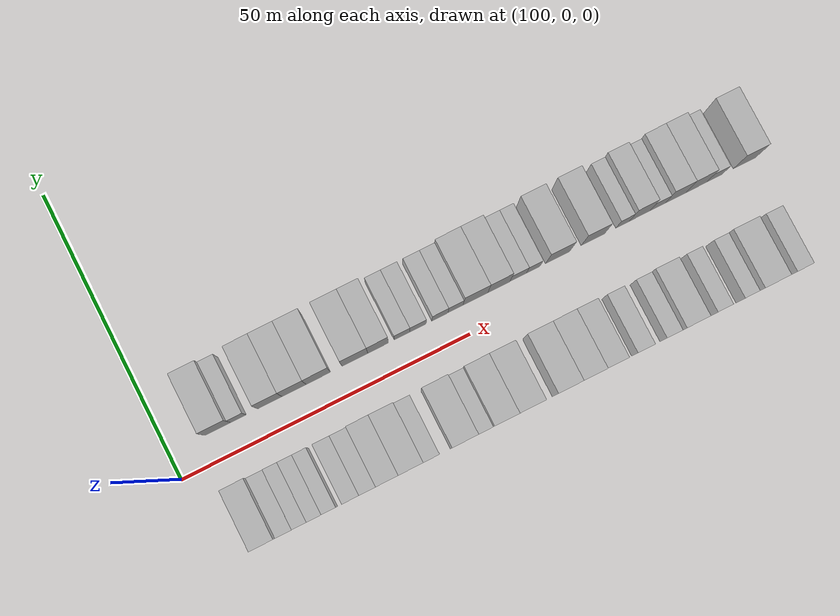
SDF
<sdf version="1.6">
 <world name="default">
  <model name="building_24">
   <static>1</static>
   <pose>108.4501 9.5000 0 0.000000 0.000000 1.570796</pose>
   <link name="link">
    <pose>0 0 4.50 0 0 0</pose>
    <collision name="collision"><geometry><box><size>10.0000 4.3986 9.0000</size></box></geometry></collision>
    <visual name="visual">
     <cast_shadows>0</cast_shadows>
     <geometry><box><size>10.0000 4.3986 9.0000</size></box></geometry>
     <material>
      <script>
       <uri>model://HANNAS_wall/materials/scripts</uri>
       <uri>model://HANNAS_wall/materials/textures</uri>
       <name>vrc/HANNAS_wall</name>
      </script>
     </material>
    </visual>
   </link>
  </model>
  <model name="building_25">
   <static>1</static>
   <pose>111.9761 9.5000 0 0.000000 0.000000 1.570796</pose>
   <link name="link">
    <pose>0 0 3.00 0 0 0</pose>
    <collision name="collision"><geometry><box><size>10.0000 2.6534 6.0000</size></box></geometry></collision>
    <visual name="visual">
     <cast_shadows>0</cast_shadows>
     <geometry><box><size>10.0000 2.6534 6.0000</size></box></geometry>
     <material>
      <script>
       <uri>model://HANNAS_wall/materials/scripts</uri>
       <uri>model://HANNAS_wall/materials/textures</uri>
       <name>vrc/HANNAS_wall</name>
      </script>
     </material>
    </visual>
   </link>
  </model>
  <model name="building_26">
   <static>1</static>
   <pose>117.3991 9.5000 0 0.000000 0.000000 1.570796</pose>
   <link name="link">
    <pose>0 0 4.50 0 0 0</pose>
    <collision name="collision"><geometry><box><size>10.0000 4.1927 9.0000</size></box></geometry></collision>
    <visual name="visual">
     <cast_shadows>0</cast_shadows>
     <geometry><box><size>10.0000 4.1927 9.0000</size></box></geometry>
     <material>
      <script>
       <uri>model://HANNAS_wall/materials/scripts</uri>
       <uri>model://HANNAS_wall/materials/textures</uri>
       <name>vrc/HANNAS_wall</name>
      </script>
     </material>
    </visual>
   </link>
  </model>
  <model name="building_27">
   <static>1</static>
   <pose>121.5725 9.5000 0 0.000000 0.000000 1.570796</pose>
   <link name="link">
    <pose>0 0 4.50 0 0 0</pose>
    <collision name="collision"><geometry><box><size>10.0000 4.1540 9.0000</size></box></geometry></collision>
    <visual name="visual">
     <cast_shadows>0</cast_shadows>
     <geometry><box><size>10.0000 4.1540 9.0000</size></box></geometry>
     <material>
      <script>
       <uri>model://HANNAS_wall/materials/scripts</uri>
       <uri>model://HANNAS_wall/materials/textures</uri>
       <name>vrc/HANNAS_wall</name>
      </script>
     </material>
    </visual>
   </link>
  </model>
  <model name="building_28">
   <static>1</static>
   <pose>125.7727 9.5000 0 0.000000 0.000000 1.570796</pose>
   <link name="link">
    <pose>0 0 4.50 0 0 0</pose>
    <collision name="collision"><geometry><box><size>10.0000 4.2464 9.0000</size></box></geometry></collision>
    <visual name="visual">
     <cast_shadows>0</cast_shadows>
     <geometry><box><size>10.0000 4.2464 9.0000</size></box></geometry>
     <material>
      <script>
       <uri>model://HANNAS_wall/materials/scripts</uri>
       <uri>model://HANNAS_wall/materials/textures</uri>
       <name>vrc/HANNAS_wall</name>
      </script>
     </material>
    </visual>
   </link>
  </model>
  <model name="building_29">
   <static>1</static>
   <pose>132.1418 9.5000 0 0.000000 0.000000 1.570796</pose>
   <link name="link">
    <pose>0 0 4.50 0 0 0</pose>
    <collision name="collision"><geometry><box><size>10.0000 4.4919 9.0000</size></box></geometry></collision>
    <visual name="visual">
     <cast_shadows>0</cast_shadows>
     <geometry><box><size>10.0000 4.4919 9.0000</size></box></geometry>
     <material>
      <script>
       <uri>model://HANNAS_wall/materials/scripts</uri>
       <uri>model://HANNAS_wall/materials/textures</uri>
       <name>vrc/HANNAS_wall</name>
      </script>
     </material>
    </visual>
   </link>
  </model>
  <model name="building_30">
   <static>1</static>
   <pose>136.1891 9.5000 0 0.000000 0.000000 1.570796</pose>
   <link name="link">
    <pose>0 0 4.50 0 0 0</pose>
    <collision name="collision"><geometry><box><size>10.0000 3.6027 9.0000</size></box></geometry></collision>
    <visual name="visual">
     <cast_shadows>0</cast_shadows>
     <geometry><box><size>10.0000 3.6027 9.0000</size></box></geometry>
     <material>
      <script>
       <uri>model://HANNAS_wall/materials/scripts</uri>
       <uri>model://HANNAS_wall/materials/textures</uri>
       <name>vrc/HANNAS_wall</name>
      </script>
     </material>
    </visual>
   </link>
  </model>
  <model name="building_31">
   <static>1</static>
   <pose>140.3614 9.5000 0 0.000000 0.000000 1.570796</pose>
   <link name="link">
    <pose>0 0 3.00 0 0 0</pose>
    <collision name="collision"><geometry><box><size>10.0000 2.7417 6.0000</size></box></geometry></collision>
    <visual name="visual">
     <cast_shadows>0</cast_shadows>
     <geometry><box><size>10.0000 2.7417 6.0000</size></box></geometry>
     <material>
      <script>
       <uri>model://HANNAS_wall/materials/scripts</uri>
       <uri>model://HANNAS_wall/materials/textures</uri>
       <name>vrc/HANNAS_wall</name>
      </script>
     </material>
    </visual>
   </link>
  </model>
  <model name="building_32">
   <static>1</static>
   <pose>143.1497 9.5000 0 0.000000 0.000000 1.570796</pose>
   <link name="link">
    <pose>0 0 3.00 0 0 0</pose>
    <collision name="collision"><geometry><box><size>10.0000 2.8349 6.0000</size></box></geometry></collision>
    <visual name="visual">
     <cast_shadows>0</cast_shadows>
     <geometry><box><size>10.0000 2.8349 6.0000</size></box></geometry>
     <material>
      <script>
       <uri>model://HANNAS_wall/materials/scripts</uri>
       <uri>model://HANNAS_wall/materials/textures</uri>
       <name>vrc/HANNAS_wall</name>
      </script>
     </material>
    </visual>
   </link>
  </model>
  <model name="building_33">
   <static>1</static>
   <pose>146.9822 9.5000 0 0.000000 0.000000 1.570796</pose>
   <link name="link">
    <pose>0 0 3.00 0 0 0</pose>
    <collision name="collision"><geometry><box><size>10.0000 2.8301 6.0000</size></box></geometry></collision>
    <visual name="visual">
     <cast_shadows>0</cast_shadows>
     <geometry><box><size>10.0000 2.8301 6.0000</size></box></geometry>
     <material>
      <script>
       <uri>model://HANNAS_wall/materials/scripts</uri>
       <uri>model://HANNAS_wall/materials/textures</uri>
       <name>vrc/HANNAS_wall</name>
      </script>
     </material>
    </visual>
   </link>
  </model>
  <model name="building_34">
   <static>1</static>
   <pose>149.7100 9.5000 0 0.000000 0.000000 1.570796</pose>
   <link name="link">
    <pose>0 0 3.00 0 0 0</pose>
    <collision name="collision"><geometry><box><size>10.0000 2.6255 6.0000</size></box></geometry></collision>
    <visual name="visual">
     <cast_shadows>0</cast_shadows>
     <geometry><box><size>10.0000 2.6255 6.0000</size></box></geometry>
     <material>
      <script>
       <uri>model://HANNAS_wall/materials/scripts</uri>
       <uri>model://HANNAS_wall/materials/textures</uri>
       <name>vrc/HANNAS_wall</name>
      </script>
     </material>
    </visual>
   </link>
  </model>
  <model name="building_35">
   <static>1</static>
   <pose>153.2073 9.5000 0 0.000000 0.000000 1.570796</pose>
   <link name="link">
    <pose>0 0 4.50 0 0 0</pose>
    <collision name="collision"><geometry><box><size>10.0000 4.3690 9.0000</size></box></geometry></collision>
    <visual name="visual">
     <cast_shadows>0</cast_shadows>
     <geometry><box><size>10.0000 4.3690 9.0000</size></box></geometry>
     <material>
      <script>
       <uri>model://HANNAS_wall/materials/scripts</uri>
       <uri>model://HANNAS_wall/materials/textures</uri>
       <name>vrc/HANNAS_wall</name>
      </script>
     </material>
    </visual>
   </link>
  </model>
  <model name="building_36">
   <static>1</static>
   <pose>157.3263 9.5000 0 0.000000 0.000000 1.570796</pose>
   <link name="link">
    <pose>0 0 4.50 0 0 0</pose>
    <collision name="collision"><geometry><box><size>10.0000 3.8691 9.0000</size></box></geometry></collision>
    <visual name="visual">
     <cast_shadows>0</cast_shadows>
     <geometry><box><size>10.0000 3.8691 9.0000</size></box></geometry>
     <material>
      <script>
       <uri>model://HANNAS_wall/materials/scripts</uri>
       <uri>model://HANNAS_wall/materials/textures</uri>
       <name>vrc/HANNAS_wall</name>
      </script>
     </material>
    </visual>
   </link>
  </model>
  <model name="building_37">
   <static>1</static>
   <pose>160.7287 9.5000 0 0.000000 0.000000 1.570796</pose>
   <link name="link">
    <pose>0 0 3.00 0 0 0</pose>
    <collision name="collision"><geometry><box><size>10.0000 2.9357 6.0000</size></box></geometry></collision>
    <visual name="visual">
     <cast_shadows>0</cast_shadows>
     <geometry><box><size>10.0000 2.9357 6.0000</size></box></geometry>
     <material>
      <script>
       <uri>model://HANNAS_wall/materials/scripts</uri>
       <uri>model://HANNAS_wall/materials/textures</uri>
       <name>vrc/HANNAS_wall</name>
      </script>
     </material>
    </visual>
   </link>
  </model>
  <model name="building_38">
   <static>1</static>
   <pose>163.3969 9.5000 0 0.000000 0.000000 1.570796</pose>
   <link name="link">
    <pose>0 0 3.00 0 0 0</pose>
    <collision name="collision"><geometry><box><size>10.0000 2.4005 6.0000</size></box></geometry></collision>
    <visual name="visual">
     <cast_shadows>0</cast_shadows>
     <geometry><box><size>10.0000 2.4005 6.0000</size></box></geometry>
     <material>
      <script>
       <uri>model://HANNAS_wall/materials/scripts</uri>
       <uri>model://HANNAS_wall/materials/textures</uri>
       <name>vrc/HANNAS_wall</name>
      </script>
     </material>
    </visual>
   </link>
  </model>
  <model name="building_39">
   <static>1</static>
   <pose>167.7573 9.5000 0 0.000000 0.000000 1.570796</pose>
   <link name="link">
    <pose>0 0 4.50 0 0 0</pose>
    <collision name="collision"><geometry><box><size>10.0000 4.3204 9.0000</size></box></geometry></collision>
    <visual name="visual">
     <cast_shadows>0</cast_shadows>
     <geometry><box><size>10.0000 4.3204 9.0000</size></box></geometry>
     <material>
      <script>
       <uri>model://HANNAS_wall/materials/scripts</uri>
       <uri>model://HANNAS_wall/materials/textures</uri>
       <name>vrc/HANNAS_wall</name>
      </script>
     </material>
    </visual>
   </link>
  </model>
  <model name="building_40">
   <static>1</static>
   <pose>173.9975 9.5000 0 0.000000 0.000000 1.570796</pose>
   <link name="link">
    <pose>0 0 4.50 0 0 0</pose>
    <collision name="collision"><geometry><box><size>10.0000 4.1599 9.0000</size></box></geometry></collision>
    <visual name="visual">
     <cast_shadows>0</cast_shadows>
     <geometry><box><size>10.0000 4.1599 9.0000</size></box></geometry>
     <material>
      <script>
       <uri>model://HANNAS_wall/materials/scripts</uri>
       <uri>model://HANNAS_wall/materials/textures</uri>
       <name>vrc/HANNAS_wall</name>
      </script>
     </material>
    </visual>
   </link>
  </model>
  <model name="building_41">
   <static>1</static>
   <pose>179.2896 9.5000 0 0.000000 0.000000 1.570796</pose>
   <link name="link">
    <pose>0 0 3.00 0 0 0</pose>
    <collision name="collision"><geometry><box><size>10.0000 2.4242 6.0000</size></box></geometry></collision>
    <visual name="visual">
     <cast_shadows>0</cast_shadows>
     <geometry><box><size>10.0000 2.4242 6.0000</size></box></geometry>
     <material>
      <script>
       <uri>model://HANNAS_wall/materials/scripts</uri>
       <uri>model://HANNAS_wall/materials/textures</uri>
       <name>vrc/HANNAS_wall</name>
      </script>
     </material>
    </visual>
   </link>
  </model>
  <model name="building_42">
   <static>1</static>
   <pose>182.3201 9.5000 0 0.000000 0.000000 1.570796</pose>
   <link name="link">
    <pose>0 0 4.50 0 0 0</pose>
    <collision name="collision"><geometry><box><size>10.0000 3.6369 9.0000</size></box></geometry></collision>
    <visual name="visual">
     <cast_shadows>0</cast_shadows>
     <geometry><box><size>10.0000 3.6369 9.0000</size></box></geometry>
     <material>
      <script>
       <uri>model://HANNAS_wall/materials/scripts</uri>
       <uri>model://HANNAS_wall/materials/textures</uri>
       <name>vrc/HANNAS_wall</name>
      </script>
     </material>
    </visual>
   </link>
  </model>
  <model name="building_43">
   <static>1</static>
   <pose>185.5018 9.5000 0 0.000000 0.000000 1.570796</pose>
   <link name="link">
    <pose>0 0 3.00 0 0 0</pose>
    <collision name="collision"><geometry><box><size>10.0000 2.7267 6.0000</size></box></geometry></collision>
    <visual name="visual">
     <cast_shadows>0</cast_shadows>
     <geometry><box><size>10.0000 2.7267 6.0000</size></box></geometry>
     <material>
      <script>
       <uri>model://HANNAS_wall/materials/scripts</uri>
       <uri>model://HANNAS_wall/materials/textures</uri>
       <name>vrc/HANNAS_wall</name>
      </script>
     </material>
    </visual>
   </link>
  </model>
  <model name="building_44">
   <static>1</static>
   <pose>188.6957 9.5000 0 0.000000 0.000000 1.570796</pose>
   <link name="link">
    <pose>0 0 4.50 0 0 0</pose>
    <collision name="collision"><geometry><box><size>10.0000 3.6610 9.0000</size></box></geometry></collision>
    <visual name="visual">
     <cast_shadows>0</cast_shadows>
     <geometry><box><size>10.0000 3.6610 9.0000</size></box></geometry>
     <material>
      <script>
       <uri>model://HANNAS_wall/materials/scripts</uri>
       <uri>model://HANNAS_wall/materials/textures</uri>
       <name>vrc/HANNAS_wall</name>
      </script>
     </material>
    </visual>
   </link>
  </model>
  <model name="building_45">
   <static>1</static>
   <pose>192.4081 9.5000 0 0.000000 0.000000 1.570796</pose>
   <link name="link">
    <pose>0 0 4.50 0 0 0</pose>
    <collision name="collision"><geometry><box><size>10.0000 3.7639 9.0000</size></box></geometry></collision>
    <visual name="visual">
     <cast_shadows>0</cast_shadows>
     <geometry><box><size>10.0000 3.7639 9.0000</size></box></geometry>
     <material>
      <script>
       <uri>model://HANNAS_wall/materials/scripts</uri>
       <uri>model://HANNAS_wall/materials/textures</uri>
       <name>vrc/HANNAS_wall</name>
      </script>
     </material>
    </visual>
   </link>
  </model>
  <model name="building_46">
   <static>1</static>
   <pose>195.7033 9.5000 0 0.000000 0.000000 1.570796</pose>
   <link name="link">
    <pose>0 0 3.00 0 0 0</pose>
    <collision name="collision"><geometry><box><size>10.0000 2.8263 6.0000</size></box></geometry></collision>
    <visual name="visual">
     <cast_shadows>0</cast_shadows>
     <geometry><box><size>10.0000 2.8263 6.0000</size></box></geometry>
     <material>
      <script>
       <uri>model://HANNAS_wall/materials/scripts</uri>
       <uri>model://HANNAS_wall/materials/textures</uri>
       <name>vrc/HANNAS_wall</name>
      </script>
     </material>
    </visual>
   </link>
  </model>
  <model name="building_47">
   <static>1</static>
   <pose>201.1507 9.5000 0 0.000000 0.000000 1.570796</pose>
   <link name="link">
    <pose>0 0 4.50 0 0 0</pose>
    <collision name="collision"><geometry><box><size>10.0000 4.0687 9.0000</size></box></geometry></collision>
    <visual name="visual">
     <cast_shadows>0</cast_shadows>
     <geometry><box><size>10.0000 4.0687 9.0000</size></box></geometry>
     <material>
      <script>
       <uri>model://HANNAS_wall/materials/scripts</uri>
       <uri>model://HANNAS_wall/materials/textures</uri>
       <name>vrc/HANNAS_wall</name>
      </script>
     </material>
    </visual>
   </link>
  </model>
  <model name="building_73">
   <static>1</static>
   <pose>107.4928 -9.5000 0 0.000000 0.000000 1.570796</pose>
   <link name="link">
    <pose>0 0 4.50 0 0 0</pose>
    <collision name="collision"><geometry><box><size>10.0000 4.0130 9.0000</size></box></geometry></collision>
    <visual name="visual">
     <cast_shadows>0</cast_shadows>
     <geometry><box><size>10.0000 4.0130 9.0000</size></box></geometry>
     <material>
      <script>
       <uri>model://HANNAS_wall/materials/scripts</uri>
       <uri>model://HANNAS_wall/materials/textures</uri>
       <name>vrc/HANNAS_wall</name>
      </script>
     </material>
    </visual>
   </link>
  </model>
  <model name="building_74">
   <static>1</static>
   <pose>110.8842 -9.5000 0 0.000000 0.000000 1.570796</pose>
   <link name="link">
    <pose>0 0 3.00 0 0 0</pose>
    <collision name="collision"><geometry><box><size>10.0000 2.7699 6.0000</size></box></geometry></collision>
    <visual name="visual">
     <cast_shadows>0</cast_shadows>
     <geometry><box><size>10.0000 2.7699 6.0000</size></box></geometry>
     <material>
      <script>
       <uri>model://HANNAS_wall/materials/scripts</uri>
       <uri>model://HANNAS_wall/materials/textures</uri>
       <name>vrc/HANNAS_wall</name>
      </script>
     </material>
    </visual>
   </link>
  </model>
  <model name="building_75">
   <static>1</static>
   <pose>113.4985 -9.5000 0 0.000000 0.000000 1.570796</pose>
   <link name="link">
    <pose>0 0 3.00 0 0 0</pose>
    <collision name="collision"><geometry><box><size>10.0000 2.4585 6.0000</size></box></geometry></collision>
    <visual name="visual">
     <cast_shadows>0</cast_shadows>
     <geometry><box><size>10.0000 2.4585 6.0000</size></box></geometry>
     <material>
      <script>
       <uri>model://HANNAS_wall/materials/scripts</uri>
       <uri>model://HANNAS_wall/materials/textures</uri>
       <name>vrc/HANNAS_wall</name>
      </script>
     </material>
    </visual>
   </link>
  </model>
  <model name="building_76">
   <static>1</static>
   <pose>115.9655 -9.5000 0 0.000000 0.000000 1.570796</pose>
   <link name="link">
    <pose>0 0 3.00 0 0 0</pose>
    <collision name="collision"><geometry><box><size>10.0000 2.4755 6.0000</size></box></geometry></collision>
    <visual name="visual">
     <cast_shadows>0</cast_shadows>
     <geometry><box><size>10.0000 2.4755 6.0000</size></box></geometry>
     <material>
      <script>
       <uri>model://HANNAS_wall/materials/scripts</uri>
       <uri>model://HANNAS_wall/materials/textures</uri>
       <name>vrc/HANNAS_wall</name>
      </script>
     </material>
    </visual>
   </link>
  </model>
  <model name="building_77">
   <static>1</static>
   <pose>118.4129 -9.5000 0 0.000000 0.000000 1.570796</pose>
   <link name="link">
    <pose>0 0 3.00 0 0 0</pose>
    <collision name="collision"><geometry><box><size>10.0000 2.4194 6.0000</size></box></geometry></collision>
    <visual name="visual">
     <cast_shadows>0</cast_shadows>
     <geometry><box><size>10.0000 2.4194 6.0000</size></box></geometry>
     <material>
      <script>
       <uri>model://HANNAS_wall/materials/scripts</uri>
       <uri>model://HANNAS_wall/materials/textures</uri>
       <name>vrc/HANNAS_wall</name>
      </script>
     </material>
    </visual>
   </link>
  </model>
  <model name="building_78">
   <static>1</static>
   <pose>122.0638 -9.5000 0 0.000000 0.000000 1.570796</pose>
   <link name="link">
    <pose>0 0 3.00 0 0 0</pose>
    <collision name="collision"><geometry><box><size>10.0000 2.8823 6.0000</size></box></geometry></collision>
    <visual name="visual">
     <cast_shadows>0</cast_shadows>
     <geometry><box><size>10.0000 2.8823 6.0000</size></box></geometry>
     <material>
      <script>
       <uri>model://HANNAS_wall/materials/scripts</uri>
       <uri>model://HANNAS_wall/materials/textures</uri>
       <name>vrc/HANNAS_wall</name>
      </script>
     </material>
    </visual>
   </link>
  </model>
  <model name="building_79">
   <static>1</static>
   <pose>124.9561 -9.5000 0 0.000000 0.000000 1.570796</pose>
   <link name="link">
    <pose>0 0 3.00 0 0 0</pose>
    <collision name="collision"><geometry><box><size>10.0000 2.9024 6.0000</size></box></geometry></collision>
    <visual name="visual">
     <cast_shadows>0</cast_shadows>
     <geometry><box><size>10.0000 2.9024 6.0000</size></box></geometry>
     <material>
      <script>
       <uri>model://HANNAS_wall/materials/scripts</uri>
       <uri>model://HANNAS_wall/materials/textures</uri>
       <name>vrc/HANNAS_wall</name>
      </script>
     </material>
    </visual>
   </link>
  </model>
  <model name="building_80">
   <static>1</static>
   <pose>128.2796 -9.5000 0 0.000000 0.000000 1.570796</pose>
   <link name="link">
    <pose>0 0 4.50 0 0 0</pose>
    <collision name="collision"><geometry><box><size>10.0000 3.7445 9.0000</size></box></geometry></collision>
    <visual name="visual">
     <cast_shadows>0</cast_shadows>
     <geometry><box><size>10.0000 3.7445 9.0000</size></box></geometry>
     <material>
      <script>
       <uri>model://HANNAS_wall/materials/scripts</uri>
       <uri>model://HANNAS_wall/materials/textures</uri>
       <name>vrc/HANNAS_wall</name>
      </script>
     </material>
    </visual>
   </link>
  </model>
  <model name="building_81">
   <static>1</static>
   <pose>132.2312 -9.5000 0 0.000000 0.000000 1.570796</pose>
   <link name="link">
    <pose>0 0 4.50 0 0 0</pose>
    <collision name="collision"><geometry><box><size>10.0000 4.1588 9.0000</size></box></geometry></collision>
    <visual name="visual">
     <cast_shadows>0</cast_shadows>
     <geometry><box><size>10.0000 4.1588 9.0000</size></box></geometry>
     <material>
      <script>
       <uri>model://HANNAS_wall/materials/scripts</uri>
       <uri>model://HANNAS_wall/materials/textures</uri>
       <name>vrc/HANNAS_wall</name>
      </script>
     </material>
    </visual>
   </link>
  </model>
  <model name="building_82">
   <static>1</static>
   <pose>135.7006 -9.5000 0 0.000000 0.000000 1.570796</pose>
   <link name="link">
    <pose>0 0 3.00 0 0 0</pose>
    <collision name="collision"><geometry><box><size>10.0000 2.7801 6.0000</size></box></geometry></collision>
    <visual name="visual">
     <cast_shadows>0</cast_shadows>
     <geometry><box><size>10.0000 2.7801 6.0000</size></box></geometry>
     <material>
      <script>
       <uri>model://HANNAS_wall/materials/scripts</uri>
       <uri>model://HANNAS_wall/materials/textures</uri>
       <name>vrc/HANNAS_wall</name>
      </script>
     </material>
    </visual>
   </link>
  </model>
  <model name="building_83">
   <static>1</static>
   <pose>141.3119 -9.5000 0 0.000000 0.000000 1.570796</pose>
   <link name="link">
    <pose>0 0 4.50 0 0 0</pose>
    <collision name="collision"><geometry><box><size>10.0000 4.4426 9.0000</size></box></geometry></collision>
    <visual name="visual">
     <cast_shadows>0</cast_shadows>
     <geometry><box><size>10.0000 4.4426 9.0000</size></box></geometry>
     <material>
      <script>
       <uri>model://HANNAS_wall/materials/scripts</uri>
       <uri>model://HANNAS_wall/materials/textures</uri>
       <name>vrc/HANNAS_wall</name>
      </script>
     </material>
    </visual>
   </link>
  </model>
  <model name="building_84">
   <static>1</static>
   <pose>144.8622 -9.5000 0 0.000000 0.000000 1.570796</pose>
   <link name="link">
    <pose>0 0 3.00 0 0 0</pose>
    <collision name="collision"><geometry><box><size>10.0000 2.6580 6.0000</size></box></geometry></collision>
    <visual name="visual">
     <cast_shadows>0</cast_shadows>
     <geometry><box><size>10.0000 2.6580 6.0000</size></box></geometry>
     <material>
      <script>
       <uri>model://HANNAS_wall/materials/scripts</uri>
       <uri>model://HANNAS_wall/materials/textures</uri>
       <name>vrc/HANNAS_wall</name>
      </script>
     </material>
    </visual>
   </link>
  </model>
  <model name="building_85">
   <static>1</static>
   <pose>148.3122 -9.5000 0 0.000000 0.000000 1.570796</pose>
   <link name="link">
    <pose>0 0 4.50 0 0 0</pose>
    <collision name="collision"><geometry><box><size>10.0000 4.2419 9.0000</size></box></geometry></collision>
    <visual name="visual">
     <cast_shadows>0</cast_shadows>
     <geometry><box><size>10.0000 4.2419 9.0000</size></box></geometry>
     <material>
      <script>
       <uri>model://HANNAS_wall/materials/scripts</uri>
       <uri>model://HANNAS_wall/materials/textures</uri>
       <name>vrc/HANNAS_wall</name>
      </script>
     </material>
    </visual>
   </link>
  </model>
  <model name="building_86">
   <static>1</static>
   <pose>152.6591 -9.5000 0 0.000000 0.000000 1.570796</pose>
   <link name="link">
    <pose>0 0 4.50 0 0 0</pose>
    <collision name="collision"><geometry><box><size>10.0000 4.4520 9.0000</size></box></geometry></collision>
    <visual name="visual">
     <cast_shadows>0</cast_shadows>
     <geometry><box><size>10.0000 4.4520 9.0000</size></box></geometry>
     <material>
      <script>
       <uri>model://HANNAS_wall/materials/scripts</uri>
       <uri>model://HANNAS_wall/materials/textures</uri>
       <name>vrc/HANNAS_wall</name>
      </script>
     </material>
    </visual>
   </link>
  </model>
  <model name="building_87">
   <static>1</static>
   <pose>159.0327 -9.5000 0 0.000000 0.000000 1.570796</pose>
   <link name="link">
    <pose>0 0 4.50 0 0 0</pose>
    <collision name="collision"><geometry><box><size>10.0000 4.2951 9.0000</size></box></geometry></collision>
    <visual name="visual">
     <cast_shadows>0</cast_shadows>
     <geometry><box><size>10.0000 4.2951 9.0000</size></box></geometry>
     <material>
      <script>
       <uri>model://HANNAS_wall/materials/scripts</uri>
       <uri>model://HANNAS_wall/materials/textures</uri>
       <name>vrc/HANNAS_wall</name>
      </script>
     </material>
    </visual>
   </link>
  </model>
  <model name="building_88">
   <static>1</static>
   <pose>163.2067 -9.5000 0 0.000000 0.000000 1.570796</pose>
   <link name="link">
    <pose>0 0 4.50 0 0 0</pose>
    <collision name="collision"><geometry><box><size>10.0000 4.0529 9.0000</size></box></geometry></collision>
    <visual name="visual">
     <cast_shadows>0</cast_shadows>
     <geometry><box><size>10.0000 4.0529 9.0000</size></box></geometry>
     <material>
      <script>
       <uri>model://HANNAS_wall/materials/scripts</uri>
       <uri>model://HANNAS_wall/materials/textures</uri>
       <name>vrc/HANNAS_wall</name>
      </script>
     </material>
    </visual>
   </link>
  </model>
  <model name="building_89">
   <static>1</static>
   <pose>167.0358 -9.5000 0 0.000000 0.000000 1.570796</pose>
   <link name="link">
    <pose>0 0 4.50 0 0 0</pose>
    <collision name="collision"><geometry><box><size>10.0000 3.6054 9.0000</size></box></geometry></collision>
    <visual name="visual">
     <cast_shadows>0</cast_shadows>
     <geometry><box><size>10.0000 3.6054 9.0000</size></box></geometry>
     <material>
      <script>
       <uri>model://HANNAS_wall/materials/scripts</uri>
       <uri>model://HANNAS_wall/materials/textures</uri>
       <name>vrc/HANNAS_wall</name>
      </script>
     </material>
    </visual>
   </link>
  </model>
  <model name="building_90">
   <static>1</static>
   <pose>172.3378 -9.5000 0 0.000000 0.000000 1.570796</pose>
   <link name="link">
    <pose>0 0 3.00 0 0 0</pose>
    <collision name="collision"><geometry><box><size>10.0000 2.9986 6.0000</size></box></geometry></collision>
    <visual name="visual">
     <cast_shadows>0</cast_shadows>
     <geometry><box><size>10.0000 2.9986 6.0000</size></box></geometry>
     <material>
      <script>
       <uri>model://HANNAS_wall/materials/scripts</uri>
       <uri>model://HANNAS_wall/materials/textures</uri>
       <name>vrc/HANNAS_wall</name>
      </script>
     </material>
    </visual>
   </link>
  </model>
  <model name="building_91">
   <static>1</static>
   <pose>177.2059 -9.5000 0 0.000000 0.000000 1.570796</pose>
   <link name="link">
    <pose>0 0 3.00 0 0 0</pose>
    <collision name="collision"><geometry><box><size>10.0000 2.7375 6.0000</size></box></geometry></collision>
    <visual name="visual">
     <cast_shadows>0</cast_shadows>
     <geometry><box><size>10.0000 2.7375 6.0000</size></box></geometry>
     <material>
      <script>
       <uri>model://HANNAS_wall/materials/scripts</uri>
       <uri>model://HANNAS_wall/materials/textures</uri>
       <name>vrc/HANNAS_wall</name>
      </script>
     </material>
    </visual>
   </link>
  </model>
  <model name="building_92">
   <static>1</static>
   <pose>180.5887 -9.5000 0 0.000000 0.000000 1.570796</pose>
   <link name="link">
    <pose>0 0 4.50 0 0 0</pose>
    <collision name="collision"><geometry><box><size>10.0000 4.0280 9.0000</size></box></geometry></collision>
    <visual name="visual">
     <cast_shadows>0</cast_shadows>
     <geometry><box><size>10.0000 4.0280 9.0000</size></box></geometry>
     <material>
      <script>
       <uri>model://HANNAS_wall/materials/scripts</uri>
       <uri>model://HANNAS_wall/materials/textures</uri>
       <name>vrc/HANNAS_wall</name>
      </script>
     </material>
    </visual>
   </link>
  </model>
  <model name="building_93">
   <static>1</static>
   <pose>185.9545 -9.5000 0 0.000000 0.000000 1.570796</pose>
   <link name="link">
    <pose>0 0 3.00 0 0 0</pose>
    <collision name="collision"><geometry><box><size>10.0000 2.7037 6.0000</size></box></geometry></collision>
    <visual name="visual">
     <cast_shadows>0</cast_shadows>
     <geometry><box><size>10.0000 2.7037 6.0000</size></box></geometry>
     <material>
      <script>
       <uri>model://HANNAS_wall/materials/scripts</uri>
       <uri>model://HANNAS_wall/materials/textures</uri>
       <name>vrc/HANNAS_wall</name>
      </script>
     </material>
    </visual>
   </link>
  </model>
  <model name="building_94">
   <static>1</static>
   <pose>190.5932 -9.5000 0 0.000000 0.000000 1.570796</pose>
   <link name="link">
    <pose>0 0 3.00 0 0 0</pose>
    <collision name="collision"><geometry><box><size>10.0000 2.5736 6.0000</size></box></geometry></collision>
    <visual name="visual">
     <cast_shadows>0</cast_shadows>
     <geometry><box><size>10.0000 2.5736 6.0000</size></box></geometry>
     <material>
      <script>
       <uri>model://HANNAS_wall/materials/scripts</uri>
       <uri>model://HANNAS_wall/materials/textures</uri>
       <name>vrc/HANNAS_wall</name>
      </script>
     </material>
    </visual>
   </link>
  </model>
  <model name="building_95">
   <static>1</static>
   <pose>194.1263 -9.5000 0 0.000000 0.000000 1.570796</pose>
   <link name="link">
    <pose>0 0 4.50 0 0 0</pose>
    <collision name="collision"><geometry><box><size>10.0000 4.4927 9.0000</size></box></geometry></collision>
    <visual name="visual">
     <cast_shadows>0</cast_shadows>
     <geometry><box><size>10.0000 4.4927 9.0000</size></box></geometry>
     <material>
      <script>
       <uri>model://HANNAS_wall/materials/scripts</uri>
       <uri>model://HANNAS_wall/materials/textures</uri>
       <name>vrc/HANNAS_wall</name>
      </script>
     </material>
    </visual>
   </link>
  </model>
  <model name="building_96">
   <static>1</static>
   <pose>199.8323 -9.5000 0 0.000000 0.000000 1.570796</pose>
   <link name="link">
    <pose>0 0 3.00 0 0 0</pose>
    <collision name="collision"><geometry><box><size>10.0000 2.9193 6.0000</size></box></geometry></collision>
    <visual name="visual">
     <cast_shadows>0</cast_shadows>
     <geometry><box><size>10.0000 2.9193 6.0000</size></box></geometry>
     <material>
      <script>
       <uri>model://HANNAS_wall/materials/scripts</uri>
       <uri>model://HANNAS_wall/materials/textures</uri>
       <name>vrc/HANNAS_wall</name>
      </script>
     </material>
    </visual>
   </link>
  </model>
 </world>
</sdf>
